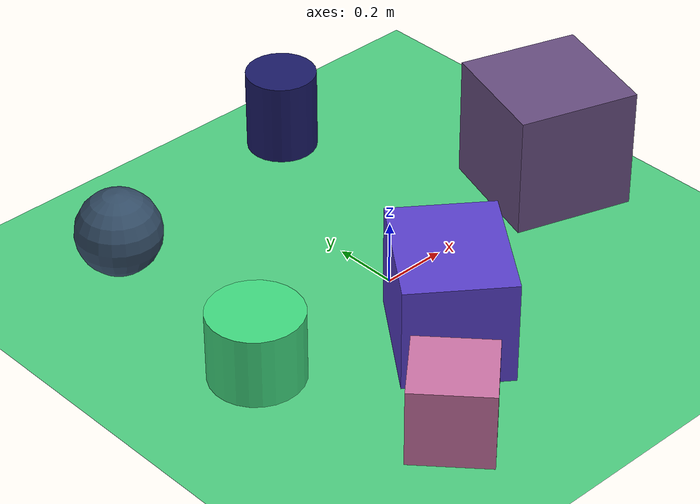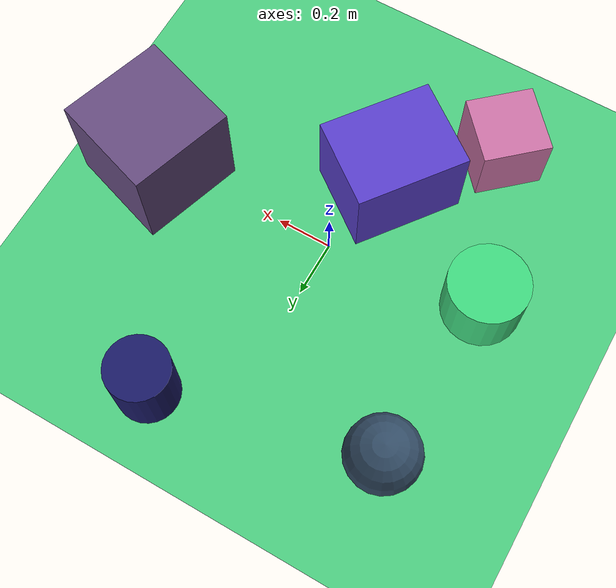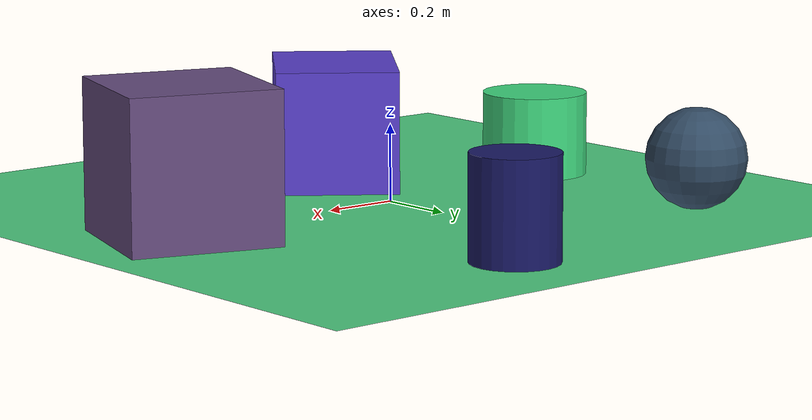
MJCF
<mujoco>
   <asset>
<texture type="skybox" builtin="gradient" rgb1="0.9 0.1 0.4" rgb2="0.1 0.1 0.4" width="500" height="500"/>
<texture name="checker_0" builtin="checker" rgb1="0.0 0.4 0.6" rgb2="0.7 0.1 1.0" width="500" height="500"/>
<texture name="gradient_1" builtin="gradient" rgb1="0.2 0.2 0.4" rgb2="0.2 0.4 0.4" width="500" height="500"/>
<texture name="flat_2" builtin="flat" rgb1="0.4 0.3 0.5" rgb2="0.4 0.3 0.5"  width="500" height="500"/>
<texture name="checker_3" builtin="checker" rgb1="0.4 0.9 0.7" rgb2="0.1 0.8 0.3" width="500" height="500"/>
<texture name="checker_4" builtin="checker" rgb1="0.9 0.3 0.7" rgb2="0.7 0.6 0.6" width="500" height="500"/>
<texture name="flat_5" builtin="flat" rgb1="0.1 0.1 0.4" rgb2="0.1 0.1 0.4"  width="500" height="500"/><material name="checker_0_mat" reflectance="0.3995876270867743" texrepeat="9 9" texture="checker_0" texuniform="false" />
<material name="gradient_1_mat" reflectance="0.2333751998796818" texture="gradient_1" texuniform="true"/>
<material name="flat_2_mat" reflectance="0.9038985391493138" texture="flat_2" texuniform="true"/>
<material name="checker_3_mat" reflectance="0.8679763074518768" texrepeat="9 9" texture="checker_3" texuniform="false" />
<material name="checker_4_mat" reflectance="0.8014874709909962" texrepeat="4 4" texture="checker_4" texuniform="false" />
<material name="flat_5_mat" reflectance="0.24635159115248118" texture="flat_5" texuniform="true"/>
   </asset>

   <worldbody>
     <geom type="plane" size="1 1 0.1" rgba="0.3 0.8 0.5 1" />
<light pos="-0.04908287505217457 0.4367617724317947 2" dir="0 0 -1" cutoff="90" diffuse="1 1 1" specular="1 1 1"/>
<light pos="-0.851471085393783 -0.7405627332389362 2" dir="0 0 -1" cutoff="90" diffuse="1 1 1" specular="1 1 1"/>
<geom type="box" pos="-0.07 -0.31 0.16" size="0.2 0.16 0.16" material="checker_0_mat" euler="0 0 53" />
<geom type="sphere" pos="-0.52 0.58 0.13" size="0.13 0.13 0.13" material="gradient_1_mat" euler="0 0 25" />
<geom type="box" pos="0.68 0.03 0.19" size="0.19 0.19 0.19" material="flat_2_mat" euler="0 0 72" />
<geom type="cylinder" pos="-0.56 -0.06 0.11" size="0.14 0.11 0.11" material="checker_3_mat" euler="0 0 40" />
<geom type="box" pos="-0.36 -0.61 0.12" size="0.12 0.12 0.12" material="checker_4_mat" euler="0 0 42" />
<geom type="cylinder" pos="0.26 0.75 0.13" size="0.11 0.13 0.13" material="flat_5_mat" euler="0 0 78" /><camera euler="60 0 180" fovy="60" name="camera1" pos="-0.2 -1.5 1"></camera>   </worldbody>
   <visual>
      <headlight diffuse="0.7 0.7 0.7"/>
   </visual>
</mujoco>
